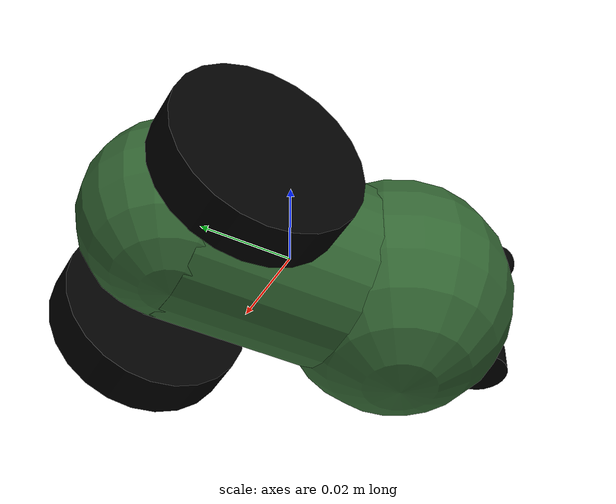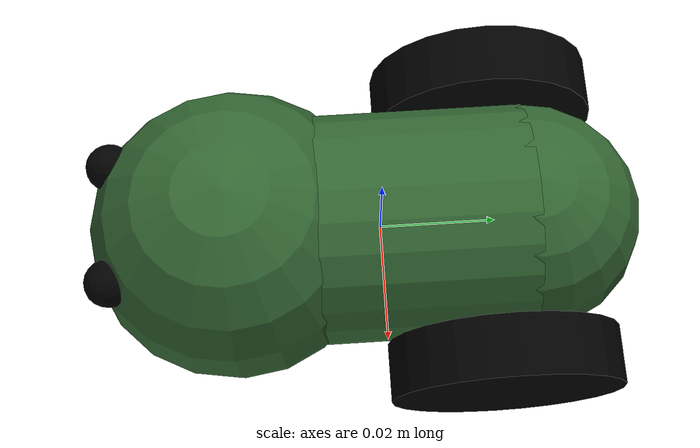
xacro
<?xml version="1.0"?>
<robot name="micromouse" xmlns:xacro="https://www.ros.org/wiki/xacro">

    <!-- Import all Gazebo-customization elements, including Gazebo colors -->
    <xacro:include filename="$(find micromouse)/urdf/micromouse_bot.gazebo" />

    <material name="body_texture">
        <color rgba="0.2 0.4 0.2 1.0"/>
    </material>

    <material name="black">
        <color rgba="0.0 0.0 0.0 1.0"/>
    </material>

    <xacro:property name="rotate" value="1.57079632679"/>
    <xacro:property name="head_radius" value="0.025"/>
    <xacro:property name="body_radius" value="0.020"/>
    <xacro:property name="body_length" value="0.05"/>

    <xacro:macro name="default_inertial">
        <inertial>
            <mass value="0.001" />
            <inertia ixx="1e-06" ixy="0.0" ixz="0.0" iyy="1e-06" iyz="0.0" izz="1e-06" />
        </inertial>
    </xacro:macro>

    <link name="base_link"/>
    <link name="mouse_body_link">
        <inertial>
            <origin xyz="0.0 0.0 0.0" rpy="0.0 0.0 0.0"/>
            <mass value="0.5"/>
            <inertia ixx="0.00022083" ixy="0.0" ixz="0.0" iyy="0.00022083" iyz="0.0" izz="0.00040833"/>
        </inertial>
        <visual>
            <origin xyz="0.0 0.0 0.0" rpy="${rotate} 0.0 0.0"/>
            <geometry>
                <cylinder radius="${body_radius}" length="${body_length}"/>
            </geometry>
            <material name="body_texture"/>
        </visual>
        <collision name="body">
            <origin xyz="0.0 0.0 0.0" rpy="${rotate} 0.0 0.0"/>
            <geometry>
                <cylinder radius="${body_radius}" length="${body_length}"/>
            </geometry>
        </collision>
        <visual>
            <origin xyz="0.0 ${body_length/2} 0.0"/>
            <geometry>
                <sphere radius="${body_radius}"/>
            </geometry>
            <material name="body_texture"/>
        </visual>
        <collision>
            <origin xyz="0.0 ${body_length/2} 0.0"/>
            <geometry>
                <sphere radius="${body_radius}"/>
            </geometry>
        </collision>
    </link>

    <joint name="dummy_joint" type="fixed">
        <parent link="base_link"/>
        <child link="mouse_body_link"/>
    </joint>

    <link name="mouse_head_link">
        <xacro:default_inertial/>
        <visual>
            <origin xyz="0.0 -${body_length/2} 0.0" rpy="0.0 0.0 0.0"/>
            <geometry>
                <sphere radius="${head_radius}"/>
            </geometry>
            <material name="body_texture"/>
        </visual>
        <collision>
            <origin xyz="0.0 -${body_length/2} 0.0" rpy="0.0 0.0 0.0"/>
            <geometry>
                <sphere radius="${head_radius}"/>
            </geometry>
        </collision>
    </link>

    <joint name="mouse_head_joint" type="fixed">
        <parent link="mouse_body_link"/>
        <child link="mouse_head_link"/>
    </joint>

    <link name="mouse_left_eye_link">
        <visual>
            <origin xyz="-0.01 -${body_length/2+head_radius-0.005} 0.01"/>
            <geometry>
                <sphere radius="0.004"/>
            </geometry>
            <material name="black"/>
        </visual>
        <collision>
            <origin xyz="-0.01 -${body_length/2+head_radius-0.005} 0.01"/>
            <geometry>
                <sphere radius="0.004"/>
            </geometry>
        </collision>
        <xacro:default_inertial/>
    </link>

    <joint name="left_eye_joint" type="fixed">
        <parent link="mouse_head_link"/>
        <child link="mouse_left_eye_link"/>
    </joint>

    <link name="mouse_right_eye_link">
        <visual>
            <origin xyz="0.01 -${body_length/2+head_radius-0.005} 0.01"/>
            <geometry>
                <sphere radius="0.004"/>
            </geometry>
            <material name="black"/>
        </visual>
        <collision>
            <origin xyz="0.01 -${body_length/2+head_radius-0.005} 0.01"/>
            <geometry>
                <sphere radius="0.004"/>
            </geometry>
        </collision>
        <xacro:default_inertial/>
    </link>

    <joint name="right_eye_joint" type="fixed">
        <parent link="mouse_head_link"/>
        <child link="mouse_right_eye_link"/>
    </joint>

    <link name="mouse_nose_link">
        <visual>
            <geometry>
                <cylinder radius="0.006" length="0.0055"/>
            </geometry>
            <material name="black"/>
        </visual>
        <collision>
            <geometry>
                <cylinder radius="0.006" length="0.0055"/>
            </geometry>
        </collision>
        <xacro:default_inertial/>
    </link>

    <joint name="mouse_nose_joint" type="fixed">
        <parent link="mouse_head_link"/>
        <child link="mouse_nose_link"/>
        <origin xyz="0.0 -${body_length/2+head_radius-0.005} -0.01" rpy="${2*rotate} 0.0 0"/>
    </joint>

    <link name="right_wheel_link">
        <inertial>
            <origin xyz="0.0 0.0 0.0" rpy="0.0 ${rotate} 0.0"/>
            <mass value="0.2"/>
            <inertia ixx="2.3e-06" ixy="0.0" ixz="0.0" iyy="2.3e-06" iyz="0.0" izz="4.5e-06"/>
        </inertial>
        <visual>
            <origin xyz="0.0 0.0 0.0" rpy="0.0 ${rotate} 0.0"/>
            <geometry>
                <cylinder radius="0.02" length="0.01"/>
            </geometry>
            <material name="black"/>
        </visual>
        <collision>
            <origin xyz="0.0 0.0 0.0" rpy="0.0 ${rotate} 0.0"/>
            <geometry>
                <cylinder radius="0.02" length="0.01"/>
            </geometry>
        </collision>
    </link>

    <joint name="right_wheel_joint" type="continuous">
        <parent link="mouse_body_link"/>
        <child link="right_wheel_link"/>
        <axis xyz="1 0 0"/>
        <origin xyz="-0.025  0.02 -0.005" rpy="0 0 0"/>
        <limit effort="-1" velocity="100"/>
        <joint_properties damping="0.01" friction="0.0" />
    </joint>

    <transmission name="right_wheel_trans">
        <type>transmission_interface/SimpleTransmission</type>
        <joint name="right_wheel_joint">
            <hardwareInterface>hardware_interface/VelocityJointInterface</hardwareInterface>
        </joint>
        <actuator name="right_wheel_motor">
            <hardwareInterface>hardware_interface/VelocityJointInterface</hardwareInterface>
            <mechanicalReduction>7</mechanicalReduction>
        </actuator>
    </transmission>

    <link name="left_wheel_link">
        <inertial>
            <origin xyz="0.0 0.0 0.0" rpy="0.0 ${rotate} 0.0"/>
            <mass value="0.2"/>
            <inertia ixx="2.3e-06" ixy="0.0" ixz="0.0" iyy="2.3e-06" iyz="0.0" izz="4.5e-06"/>
        </inertial>
        <visual>
            <origin xyz="0.0 0.0 0.0" rpy="0.0 ${rotate} 0.0"/>
            <geometry>
                <cylinder radius="0.02" length="0.01"/>
            </geometry>
            <material name="black"/>
        </visual>
        <collision>
            <origin xyz="0.0 0.0 0.0" rpy="0.0 ${rotate} 0.0"/>
            <geometry>
                <cylinder radius="0.02" length="0.01"/>
            </geometry>
        </collision>
    </link>

    <joint name="left_wheel_joint" type="continuous">
        <parent link="mouse_body_link"/>
        <child link="left_wheel_link"/>
        <axis xyz="1 0 0"/>
        <origin xyz="0.025  0.02 -0.005" rpy="0 0 0"/>
        <limit effort="-1" velocity="100"/>
        <joint_properties damping="0.01" friction="0.0" />
    </joint>

    <transmission name="left_wheel_trans">
        <type>transmission_interface/SimpleTransmission</type>
        <joint name="left_wheel_joint">
            <hardwareInterface>hardware_interface/VelocityJointInterface</hardwareInterface>
        </joint>
        <actuator name="left_wheel_motor">
            <hardwareInterface>hardware_interface/VelocityJointInterface</hardwareInterface>
            <mechanicalReduction>7</mechanicalReduction>
        </actuator>
    </transmission>

</robot>
